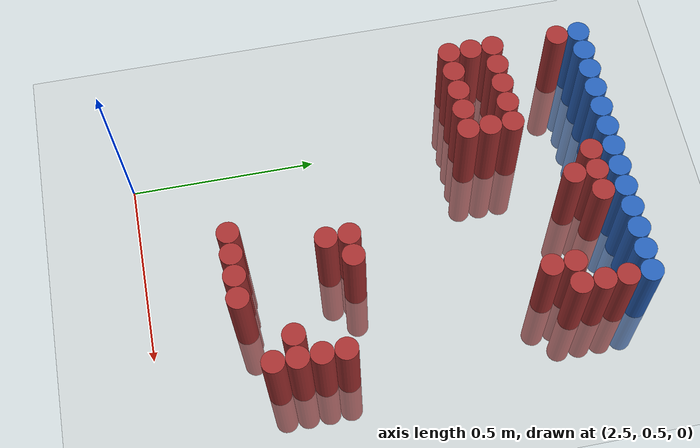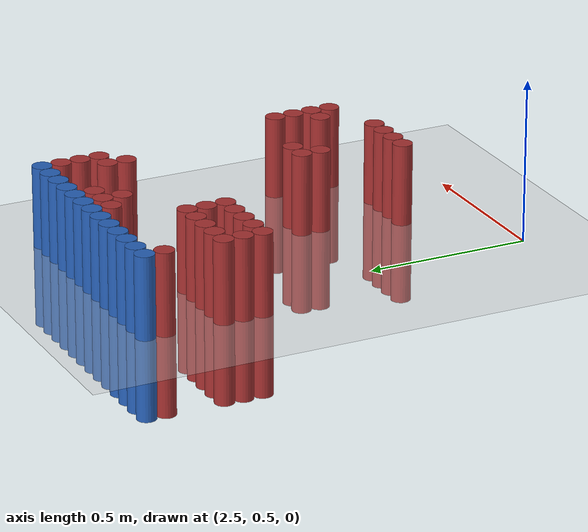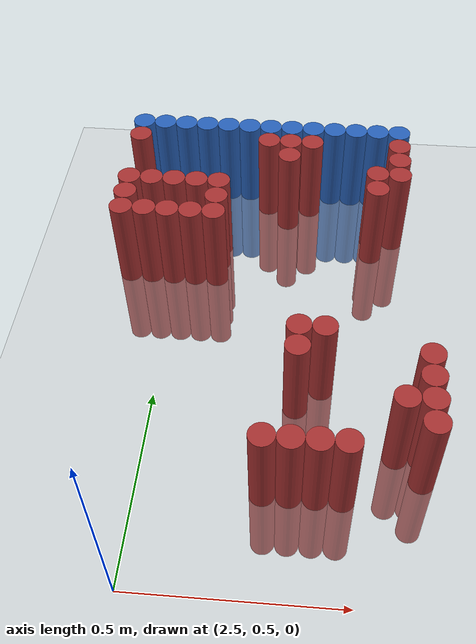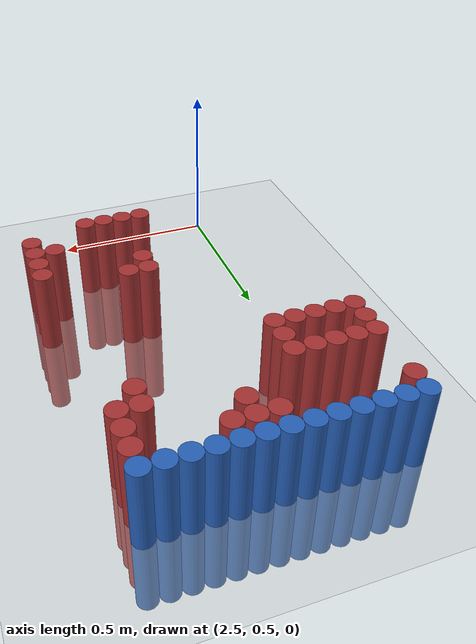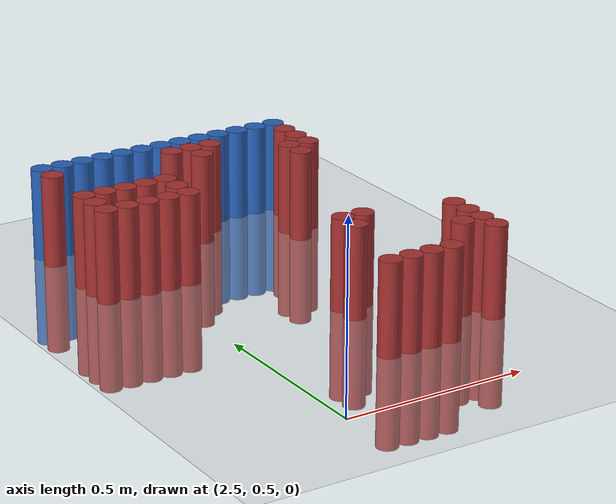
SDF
<sdf version="1.6">
 <world name="default">
  <model name="ground_plane">
   <static>1</static>
   <link name="link">
    <collision name="collision">
     <geometry><plane><normal>0 0 1</normal><size>100 100</size></plane></geometry>
     <surface><friction><ode><mu>100</mu><mu2>50</mu2></ode></friction></surface>
    </collision>
    <visual name="visual">
     <cast_shadows>0</cast_shadows>
     <geometry><plane><normal>0 0 1</normal><size>100 100</size></plane></geometry>
     <material>
      <script><uri>file://media/materials/scripts/gazebo.material</uri><name>Gazebo/Grey</name></script>
     </material>
    </visual>
   </link>
  </model>
  <model name="unit_cylinder_100">
   <static>1</static>
   <pose>2.370000 1.770000 0.000000 0.000000 0.000000 0.000000</pose>
   <link name="link">
    <inertial>
     <mass>1</mass>
     <inertia><ixx>0.145833</ixx><ixy>0</ixy><ixz>0</ixz><iyy>0.145833</iyy><iyz>0</iyz><izz>0.125</izz></inertia>
    </inertial>
    <collision name="collision">
     <geometry><cylinder><radius>0.030000</radius><length>0.5</length></cylinder></geometry>
    </collision>
    <visual name="visual">
     <geometry><cylinder><radius>0.030000</radius><length>0.5</length></cylinder></geometry>
     <material>
      <ambient>0.152000 0.379000 0.720000 1</ambient>
      <diffuse>0.152000 0.379000 0.720000 1</diffuse>
     </material>
     <material>
      <script><name>Gazebo/Grey</name><uri>file://media/materials/scripts/gazebo.material</uri></script>
     </material>
    </visual>
   </link>
  </model>
  <model name="unit_cylinder_101">
   <static>1</static>
   <pose>2.430000 1.770000 0.000000 0.000000 0.000000 0.000000</pose>
   <link name="link">
    <inertial>
     <mass>1</mass>
     <inertia><ixx>0.145833</ixx><ixy>0</ixy><ixz>0</ixz><iyy>0.145833</iyy><iyz>0</iyz><izz>0.125</izz></inertia>
    </inertial>
    <collision name="collision">
     <geometry><cylinder><radius>0.030000</radius><length>0.5</length></cylinder></geometry>
    </collision>
    <visual name="visual">
     <geometry><cylinder><radius>0.030000</radius><length>0.5</length></cylinder></geometry>
     <material>
      <ambient>0.152000 0.379000 0.720000 1</ambient>
      <diffuse>0.152000 0.379000 0.720000 1</diffuse>
     </material>
     <material>
      <script><name>Gazebo/Grey</name><uri>file://media/materials/scripts/gazebo.material</uri></script>
     </material>
    </visual>
   </link>
  </model>
  <model name="unit_cylinder_102">
   <static>1</static>
   <pose>2.490000 1.770000 0.000000 0.000000 0.000000 0.000000</pose>
   <link name="link">
    <inertial>
     <mass>1</mass>
     <inertia><ixx>0.145833</ixx><ixy>0</ixy><ixz>0</ixz><iyy>0.145833</iyy><iyz>0</iyz><izz>0.125</izz></inertia>
    </inertial>
    <collision name="collision">
     <geometry><cylinder><radius>0.030000</radius><length>0.5</length></cylinder></geometry>
    </collision>
    <visual name="visual">
     <geometry><cylinder><radius>0.030000</radius><length>0.5</length></cylinder></geometry>
     <material>
      <ambient>0.152000 0.379000 0.720000 1</ambient>
      <diffuse>0.152000 0.379000 0.720000 1</diffuse>
     </material>
     <material>
      <script><name>Gazebo/Grey</name><uri>file://media/materials/scripts/gazebo.material</uri></script>
     </material>
    </visual>
   </link>
  </model>
  <model name="unit_cylinder_103">
   <static>1</static>
   <pose>2.550000 1.770000 0.000000 0.000000 0.000000 0.000000</pose>
   <link name="link">
    <inertial>
     <mass>1</mass>
     <inertia><ixx>0.145833</ixx><ixy>0</ixy><ixz>0</ixz><iyy>0.145833</iyy><iyz>0</iyz><izz>0.125</izz></inertia>
    </inertial>
    <collision name="collision">
     <geometry><cylinder><radius>0.030000</radius><length>0.5</length></cylinder></geometry>
    </collision>
    <visual name="visual">
     <geometry><cylinder><radius>0.030000</radius><length>0.5</length></cylinder></geometry>
     <material>
      <ambient>0.152000 0.379000 0.720000 1</ambient>
      <diffuse>0.152000 0.379000 0.720000 1</diffuse>
     </material>
     <material>
      <script><name>Gazebo/Grey</name><uri>file://media/materials/scripts/gazebo.material</uri></script>
     </material>
    </visual>
   </link>
  </model>
  <model name="unit_cylinder_104">
   <static>1</static>
   <pose>2.610000 1.770000 0.000000 0.000000 0.000000 0.000000</pose>
   <link name="link">
    <inertial>
     <mass>1</mass>
     <inertia><ixx>0.145833</ixx><ixy>0</ixy><ixz>0</ixz><iyy>0.145833</iyy><iyz>0</iyz><izz>0.125</izz></inertia>
    </inertial>
    <collision name="collision">
     <geometry><cylinder><radius>0.030000</radius><length>0.5</length></cylinder></geometry>
    </collision>
    <visual name="visual">
     <geometry><cylinder><radius>0.030000</radius><length>0.5</length></cylinder></geometry>
     <material>
      <ambient>0.152000 0.379000 0.720000 1</ambient>
      <diffuse>0.152000 0.379000 0.720000 1</diffuse>
     </material>
     <material>
      <script><name>Gazebo/Grey</name><uri>file://media/materials/scripts/gazebo.material</uri></script>
     </material>
    </visual>
   </link>
  </model>
  <model name="unit_cylinder_105">
   <static>1</static>
   <pose>2.670000 1.770000 0.000000 0.000000 0.000000 0.000000</pose>
   <link name="link">
    <inertial>
     <mass>1</mass>
     <inertia><ixx>0.145833</ixx><ixy>0</ixy><ixz>0</ixz><iyy>0.145833</iyy><iyz>0</iyz><izz>0.125</izz></inertia>
    </inertial>
    <collision name="collision">
     <geometry><cylinder><radius>0.030000</radius><length>0.5</length></cylinder></geometry>
    </collision>
    <visual name="visual">
     <geometry><cylinder><radius>0.030000</radius><length>0.5</length></cylinder></geometry>
     <material>
      <ambient>0.152000 0.379000 0.720000 1</ambient>
      <diffuse>0.152000 0.379000 0.720000 1</diffuse>
     </material>
     <material>
      <script><name>Gazebo/Grey</name><uri>file://media/materials/scripts/gazebo.material</uri></script>
     </material>
    </visual>
   </link>
  </model>
  <model name="unit_cylinder_106">
   <static>1</static>
   <pose>2.730000 1.770000 0.000000 0.000000 0.000000 0.000000</pose>
   <link name="link">
    <inertial>
     <mass>1</mass>
     <inertia><ixx>0.145833</ixx><ixy>0</ixy><ixz>0</ixz><iyy>0.145833</iyy><iyz>0</iyz><izz>0.125</izz></inertia>
    </inertial>
    <collision name="collision">
     <geometry><cylinder><radius>0.030000</radius><length>0.5</length></cylinder></geometry>
    </collision>
    <visual name="visual">
     <geometry><cylinder><radius>0.030000</radius><length>0.5</length></cylinder></geometry>
     <material>
      <ambient>0.152000 0.379000 0.720000 1</ambient>
      <diffuse>0.152000 0.379000 0.720000 1</diffuse>
     </material>
     <material>
      <script><name>Gazebo/Grey</name><uri>file://media/materials/scripts/gazebo.material</uri></script>
     </material>
    </visual>
   </link>
  </model>
  <model name="unit_cylinder_107">
   <static>1</static>
   <pose>2.790000 1.770000 0.000000 0.000000 0.000000 0.000000</pose>
   <link name="link">
    <inertial>
     <mass>1</mass>
     <inertia><ixx>0.145833</ixx><ixy>0</ixy><ixz>0</ixz><iyy>0.145833</iyy><iyz>0</iyz><izz>0.125</izz></inertia>
    </inertial>
    <collision name="collision">
     <geometry><cylinder><radius>0.030000</radius><length>0.5</length></cylinder></geometry>
    </collision>
    <visual name="visual">
     <geometry><cylinder><radius>0.030000</radius><length>0.5</length></cylinder></geometry>
     <material>
      <ambient>0.152000 0.379000 0.720000 1</ambient>
      <diffuse>0.152000 0.379000 0.720000 1</diffuse>
     </material>
     <material>
      <script><name>Gazebo/Grey</name><uri>file://media/materials/scripts/gazebo.material</uri></script>
     </material>
    </visual>
   </link>
  </model>
  <model name="unit_cylinder_108">
   <static>1</static>
   <pose>2.850000 1.770000 0.000000 0.000000 0.000000 0.000000</pose>
   <link name="link">
    <inertial>
     <mass>1</mass>
     <inertia><ixx>0.145833</ixx><ixy>0</ixy><ixz>0</ixz><iyy>0.145833</iyy><iyz>0</iyz><izz>0.125</izz></inertia>
    </inertial>
    <collision name="collision">
     <geometry><cylinder><radius>0.030000</radius><length>0.5</length></cylinder></geometry>
    </collision>
    <visual name="visual">
     <geometry><cylinder><radius>0.030000</radius><length>0.5</length></cylinder></geometry>
     <material>
      <ambient>0.152000 0.379000 0.720000 1</ambient>
      <diffuse>0.152000 0.379000 0.720000 1</diffuse>
     </material>
     <material>
      <script><name>Gazebo/Grey</name><uri>file://media/materials/scripts/gazebo.material</uri></script>
     </material>
    </visual>
   </link>
  </model>
  <model name="unit_cylinder_109">
   <static>1</static>
   <pose>2.910000 1.770000 0.000000 0.000000 0.000000 0.000000</pose>
   <link name="link">
    <inertial>
     <mass>1</mass>
     <inertia><ixx>0.145833</ixx><ixy>0</ixy><ixz>0</ixz><iyy>0.145833</iyy><iyz>0</iyz><izz>0.125</izz></inertia>
    </inertial>
    <collision name="collision">
     <geometry><cylinder><radius>0.030000</radius><length>0.5</length></cylinder></geometry>
    </collision>
    <visual name="visual">
     <geometry><cylinder><radius>0.030000</radius><length>0.5</length></cylinder></geometry>
     <material>
      <ambient>0.152000 0.379000 0.720000 1</ambient>
      <diffuse>0.152000 0.379000 0.720000 1</diffuse>
     </material>
     <material>
      <script><name>Gazebo/Grey</name><uri>file://media/materials/scripts/gazebo.material</uri></script>
     </material>
    </visual>
   </link>
  </model>
  <model name="unit_cylinder_110">
   <static>1</static>
   <pose>2.970000 1.770000 0.000000 0.000000 0.000000 0.000000</pose>
   <link name="link">
    <inertial>
     <mass>1</mass>
     <inertia><ixx>0.145833</ixx><ixy>0</ixy><ixz>0</ixz><iyy>0.145833</iyy><iyz>0</iyz><izz>0.125</izz></inertia>
    </inertial>
    <collision name="collision">
     <geometry><cylinder><radius>0.030000</radius><length>0.5</length></cylinder></geometry>
    </collision>
    <visual name="visual">
     <geometry><cylinder><radius>0.030000</radius><length>0.5</length></cylinder></geometry>
     <material>
      <ambient>0.152000 0.379000 0.720000 1</ambient>
      <diffuse>0.152000 0.379000 0.720000 1</diffuse>
     </material>
     <material>
      <script><name>Gazebo/Grey</name><uri>file://media/materials/scripts/gazebo.material</uri></script>
     </material>
    </visual>
   </link>
  </model>
  <model name="unit_cylinder_111">
   <static>1</static>
   <pose>3.030000 1.770000 0.000000 0.000000 0.000000 0.000000</pose>
   <link name="link">
    <inertial>
     <mass>1</mass>
     <inertia><ixx>0.145833</ixx><ixy>0</ixy><ixz>0</ixz><iyy>0.145833</iyy><iyz>0</iyz><izz>0.125</izz></inertia>
    </inertial>
    <collision name="collision">
     <geometry><cylinder><radius>0.030000</radius><length>0.5</length></cylinder></geometry>
    </collision>
    <visual name="visual">
     <geometry><cylinder><radius>0.030000</radius><length>0.5</length></cylinder></geometry>
     <material>
      <ambient>0.152000 0.379000 0.720000 1</ambient>
      <diffuse>0.152000 0.379000 0.720000 1</diffuse>
     </material>
     <material>
      <script><name>Gazebo/Grey</name><uri>file://media/materials/scripts/gazebo.material</uri></script>
     </material>
    </visual>
   </link>
  </model>
  <model name="unit_cylinder_112">
   <static>1</static>
   <pose>3.090000 1.770000 0.000000 0.000000 0.000000 0.000000</pose>
   <link name="link">
    <inertial>
     <mass>1</mass>
     <inertia><ixx>0.145833</ixx><ixy>0</ixy><ixz>0</ixz><iyy>0.145833</iyy><iyz>0</iyz><izz>0.125</izz></inertia>
    </inertial>
    <collision name="collision">
     <geometry><cylinder><radius>0.030000</radius><length>0.5</length></cylinder></geometry>
    </collision>
    <visual name="visual">
     <geometry><cylinder><radius>0.030000</radius><length>0.5</length></cylinder></geometry>
     <material>
      <ambient>0.152000 0.379000 0.720000 1</ambient>
      <diffuse>0.152000 0.379000 0.720000 1</diffuse>
     </material>
     <material>
      <script><name>Gazebo/Grey</name><uri>file://media/materials/scripts/gazebo.material</uri></script>
     </material>
    </visual>
   </link>
  </model>
  <model name="unit_cylinder_129">
   <static>1</static>
   <pose>2.370000 1.710000 0.000000 0.000000 0.000000 0.000000</pose>
   <link name="link">
    <inertial>
     <mass>1</mass>
     <inertia><ixx>0.145833</ixx><ixy>0</ixy><ixz>0</ixz><iyy>0.145833</iyy><iyz>0</iyz><izz>0.125</izz></inertia>
    </inertial>
    <collision name="collision">
     <geometry><cylinder><radius>0.030000</radius><length>0.5</length></cylinder></geometry>
    </collision>
    <visual name="visual">
     <geometry><cylinder><radius>0.030000</radius><length>0.5</length></cylinder></geometry>
     <material>
      <ambient>0.648000 0.192000 0.192000 1</ambient>
      <diffuse>0.648000 0.192000 0.192000 1</diffuse>
     </material>
     <material>
      <script><name>Gazebo/Grey</name><uri>file://media/materials/scripts/gazebo.material</uri></script>
     </material>
    </visual>
   </link>
  </model>
  <model name="unit_cylinder_130">
   <static>1</static>
   <pose>2.730000 1.710000 0.000000 0.000000 0.000000 0.000000</pose>
   <link name="link">
    <inertial>
     <mass>1</mass>
     <inertia><ixx>0.145833</ixx><ixy>0</ixy><ixz>0</ixz><iyy>0.145833</iyy><iyz>0</iyz><izz>0.125</izz></inertia>
    </inertial>
    <collision name="collision">
     <geometry><cylinder><radius>0.030000</radius><length>0.5</length></cylinder></geometry>
    </collision>
    <visual name="visual">
     <geometry><cylinder><radius>0.030000</radius><length>0.5</length></cylinder></geometry>
     <material>
      <ambient>0.648000 0.192000 0.192000 1</ambient>
      <diffuse>0.648000 0.192000 0.192000 1</diffuse>
     </material>
     <material>
      <script><name>Gazebo/Grey</name><uri>file://media/materials/scripts/gazebo.material</uri></script>
     </material>
    </visual>
   </link>
  </model>
  <model name="unit_cylinder_131">
   <static>1</static>
   <pose>2.790000 1.710000 0.000000 0.000000 0.000000 0.000000</pose>
   <link name="link">
    <inertial>
     <mass>1</mass>
     <inertia><ixx>0.145833</ixx><ixy>0</ixy><ixz>0</ixz><iyy>0.145833</iyy><iyz>0</iyz><izz>0.125</izz></inertia>
    </inertial>
    <collision name="collision">
     <geometry><cylinder><radius>0.030000</radius><length>0.5</length></cylinder></geometry>
    </collision>
    <visual name="visual">
     <geometry><cylinder><radius>0.030000</radius><length>0.5</length></cylinder></geometry>
     <material>
      <ambient>0.648000 0.192000 0.192000 1</ambient>
      <diffuse>0.648000 0.192000 0.192000 1</diffuse>
     </material>
     <material>
      <script><name>Gazebo/Grey</name><uri>file://media/materials/scripts/gazebo.material</uri></script>
     </material>
    </visual>
   </link>
  </model>
  <model name="unit_cylinder_132">
   <static>1</static>
   <pose>2.850000 1.710000 0.000000 0.000000 0.000000 0.000000</pose>
   <link name="link">
    <inertial>
     <mass>1</mass>
     <inertia><ixx>0.145833</ixx><ixy>0</ixy><ixz>0</ixz><iyy>0.145833</iyy><iyz>0</iyz><izz>0.125</izz></inertia>
    </inertial>
    <collision name="collision">
     <geometry><cylinder><radius>0.030000</radius><length>0.5</length></cylinder></geometry>
    </collision>
    <visual name="visual">
     <geometry><cylinder><radius>0.030000</radius><length>0.5</length></cylinder></geometry>
     <material>
      <ambient>0.648000 0.192000 0.192000 1</ambient>
      <diffuse>0.648000 0.192000 0.192000 1</diffuse>
     </material>
     <material>
      <script><name>Gazebo/Grey</name><uri>file://media/materials/scripts/gazebo.material</uri></script>
     </material>
    </visual>
   </link>
  </model>
  <model name="unit_cylinder_133">
   <static>1</static>
   <pose>3.090000 1.710000 0.000000 0.000000 0.000000 0.000000</pose>
   <link name="link">
    <inertial>
     <mass>1</mass>
     <inertia><ixx>0.145833</ixx><ixy>0</ixy><ixz>0</ixz><iyy>0.145833</iyy><iyz>0</iyz><izz>0.125</izz></inertia>
    </inertial>
    <collision name="collision">
     <geometry><cylinder><radius>0.030000</radius><length>0.5</length></cylinder></geometry>
    </collision>
    <visual name="visual">
     <geometry><cylinder><radius>0.030000</radius><length>0.5</length></cylinder></geometry>
     <material>
      <ambient>0.648000 0.192000 0.192000 1</ambient>
      <diffuse>0.648000 0.192000 0.192000 1</diffuse>
     </material>
     <material>
      <script><name>Gazebo/Grey</name><uri>file://media/materials/scripts/gazebo.material</uri></script>
     </material>
    </visual>
   </link>
  </model>
  <model name="unit_cylinder_138">
   <static>1</static>
   <pose>2.790000 1.650000 0.000000 0.000000 0.000000 0.000000</pose>
   <link name="link">
    <inertial>
     <mass>1</mass>
     <inertia><ixx>0.145833</ixx><ixy>0</ixy><ixz>0</ixz><iyy>0.145833</iyy><iyz>0</iyz><izz>0.125</izz></inertia>
    </inertial>
    <collision name="collision">
     <geometry><cylinder><radius>0.030000</radius><length>0.5</length></cylinder></geometry>
    </collision>
    <visual name="visual">
     <geometry><cylinder><radius>0.030000</radius><length>0.5</length></cylinder></geometry>
     <material>
      <ambient>0.648000 0.192000 0.192000 1</ambient>
      <diffuse>0.648000 0.192000 0.192000 1</diffuse>
     </material>
     <material>
      <script><name>Gazebo/Grey</name><uri>file://media/materials/scripts/gazebo.material</uri></script>
     </material>
    </visual>
   </link>
  </model>
  <model name="unit_cylinder_139">
   <static>1</static>
   <pose>3.090000 1.650000 0.000000 0.000000 0.000000 0.000000</pose>
   <link name="link">
    <inertial>
     <mass>1</mass>
     <inertia><ixx>0.145833</ixx><ixy>0</ixy><ixz>0</ixz><iyy>0.145833</iyy><iyz>0</iyz><izz>0.125</izz></inertia>
    </inertial>
    <collision name="collision">
     <geometry><cylinder><radius>0.030000</radius><length>0.5</length></cylinder></geometry>
    </collision>
    <visual name="visual">
     <geometry><cylinder><radius>0.030000</radius><length>0.5</length></cylinder></geometry>
     <material>
      <ambient>0.648000 0.192000 0.192000 1</ambient>
      <diffuse>0.648000 0.192000 0.192000 1</diffuse>
     </material>
     <material>
      <script><name>Gazebo/Grey</name><uri>file://media/materials/scripts/gazebo.material</uri></script>
     </material>
    </visual>
   </link>
  </model>
  <model name="unit_cylinder_145">
   <static>1</static>
   <pose>3.030000 1.590000 0.000000 0.000000 0.000000 0.000000</pose>
   <link name="link">
    <inertial>
     <mass>1</mass>
     <inertia><ixx>0.145833</ixx><ixy>0</ixy><ixz>0</ixz><iyy>0.145833</iyy><iyz>0</iyz><izz>0.125</izz></inertia>
    </inertial>
    <collision name="collision">
     <geometry><cylinder><radius>0.030000</radius><length>0.5</length></cylinder></geometry>
    </collision>
    <visual name="visual">
     <geometry><cylinder><radius>0.030000</radius><length>0.5</length></cylinder></geometry>
     <material>
      <ambient>0.648000 0.192000 0.192000 1</ambient>
      <diffuse>0.648000 0.192000 0.192000 1</diffuse>
     </material>
     <material>
      <script><name>Gazebo/Grey</name><uri>file://media/materials/scripts/gazebo.material</uri></script>
     </material>
    </visual>
   </link>
  </model>
  <model name="unit_cylinder_146">
   <static>1</static>
   <pose>3.090000 1.590000 0.000000 0.000000 0.000000 0.000000</pose>
   <link name="link">
    <inertial>
     <mass>1</mass>
     <inertia><ixx>0.145833</ixx><ixy>0</ixy><ixz>0</ixz><iyy>0.145833</iyy><iyz>0</iyz><izz>0.125</izz></inertia>
    </inertial>
    <collision name="collision">
     <geometry><cylinder><radius>0.030000</radius><length>0.5</length></cylinder></geometry>
    </collision>
    <visual name="visual">
     <geometry><cylinder><radius>0.030000</radius><length>0.5</length></cylinder></geometry>
     <material>
      <ambient>0.648000 0.192000 0.192000 1</ambient>
      <diffuse>0.648000 0.192000 0.192000 1</diffuse>
     </material>
     <material>
      <script><name>Gazebo/Grey</name><uri>file://media/materials/scripts/gazebo.material</uri></script>
     </material>
    </visual>
   </link>
  </model>
  <model name="unit_cylinder_153">
   <static>1</static>
   <pose>2.370000 1.530000 0.000000 0.000000 0.000000 0.000000</pose>
   <link name="link">
    <inertial>
     <mass>1</mass>
     <inertia><ixx>0.145833</ixx><ixy>0</ixy><ixz>0</ixz><iyy>0.145833</iyy><iyz>0</iyz><izz>0.125</izz></inertia>
    </inertial>
    <collision name="collision">
     <geometry><cylinder><radius>0.030000</radius><length>0.5</length></cylinder></geometry>
    </collision>
    <visual name="visual">
     <geometry><cylinder><radius>0.030000</radius><length>0.5</length></cylinder></geometry>
     <material>
      <ambient>0.648000 0.192000 0.192000 1</ambient>
      <diffuse>0.648000 0.192000 0.192000 1</diffuse>
     </material>
     <material>
      <script><name>Gazebo/Grey</name><uri>file://media/materials/scripts/gazebo.material</uri></script>
     </material>
    </visual>
   </link>
  </model>
  <model name="unit_cylinder_154">
   <static>1</static>
   <pose>2.430000 1.530000 0.000000 0.000000 0.000000 0.000000</pose>
   <link name="link">
    <inertial>
     <mass>1</mass>
     <inertia><ixx>0.145833</ixx><ixy>0</ixy><ixz>0</ixz><iyy>0.145833</iyy><iyz>0</iyz><izz>0.125</izz></inertia>
    </inertial>
    <collision name="collision">
     <geometry><cylinder><radius>0.030000</radius><length>0.5</length></cylinder></geometry>
    </collision>
    <visual name="visual">
     <geometry><cylinder><radius>0.030000</radius><length>0.5</length></cylinder></geometry>
     <material>
      <ambient>0.648000 0.192000 0.192000 1</ambient>
      <diffuse>0.648000 0.192000 0.192000 1</diffuse>
     </material>
     <material>
      <script><name>Gazebo/Grey</name><uri>file://media/materials/scripts/gazebo.material</uri></script>
     </material>
    </visual>
   </link>
  </model>
  <model name="unit_cylinder_155">
   <static>1</static>
   <pose>2.490000 1.530000 0.000000 0.000000 0.000000 0.000000</pose>
   <link name="link">
    <inertial>
     <mass>1</mass>
     <inertia><ixx>0.145833</ixx><ixy>0</ixy><ixz>0</ixz><iyy>0.145833</iyy><iyz>0</iyz><izz>0.125</izz></inertia>
    </inertial>
    <collision name="collision">
     <geometry><cylinder><radius>0.030000</radius><length>0.5</length></cylinder></geometry>
    </collision>
    <visual name="visual">
     <geometry><cylinder><radius>0.030000</radius><length>0.5</length></cylinder></geometry>
     <material>
      <ambient>0.648000 0.192000 0.192000 1</ambient>
      <diffuse>0.648000 0.192000 0.192000 1</diffuse>
     </material>
     <material>
      <script><name>Gazebo/Grey</name><uri>file://media/materials/scripts/gazebo.material</uri></script>
     </material>
    </visual>
   </link>
  </model>
  <model name="unit_cylinder_156">
   <static>1</static>
   <pose>2.550000 1.530000 0.000000 0.000000 0.000000 0.000000</pose>
   <link name="link">
    <inertial>
     <mass>1</mass>
     <inertia><ixx>0.145833</ixx><ixy>0</ixy><ixz>0</ixz><iyy>0.145833</iyy><iyz>0</iyz><izz>0.125</izz></inertia>
    </inertial>
    <collision name="collision">
     <geometry><cylinder><radius>0.030000</radius><length>0.5</length></cylinder></geometry>
    </collision>
    <visual name="visual">
     <geometry><cylinder><radius>0.030000</radius><length>0.5</length></cylinder></geometry>
     <material>
      <ambient>0.648000 0.192000 0.192000 1</ambient>
      <diffuse>0.648000 0.192000 0.192000 1</diffuse>
     </material>
     <material>
      <script><name>Gazebo/Grey</name><uri>file://media/materials/scripts/gazebo.material</uri></script>
     </material>
    </visual>
   </link>
  </model>
  <model name="unit_cylinder_157">
   <static>1</static>
   <pose>2.610000 1.530000 0.000000 0.000000 0.000000 0.000000</pose>
   <link name="link">
    <inertial>
     <mass>1</mass>
     <inertia><ixx>0.145833</ixx><ixy>0</ixy><ixz>0</ixz><iyy>0.145833</iyy><iyz>0</iyz><izz>0.125</izz></inertia>
    </inertial>
    <collision name="collision">
     <geometry><cylinder><radius>0.030000</radius><length>0.5</length></cylinder></geometry>
    </collision>
    <visual name="visual">
     <geometry><cylinder><radius>0.030000</radius><length>0.5</length></cylinder></geometry>
     <material>
      <ambient>0.648000 0.192000 0.192000 1</ambient>
      <diffuse>0.648000 0.192000 0.192000 1</diffuse>
     </material>
     <material>
      <script><name>Gazebo/Grey</name><uri>file://media/materials/scripts/gazebo.material</uri></script>
     </material>
    </visual>
   </link>
  </model>
  <model name="unit_cylinder_158">
   <static>1</static>
   <pose>3.030000 1.530000 0.000000 0.000000 0.000000 0.000000</pose>
   <link name="link">
    <inertial>
     <mass>1</mass>
     <inertia><ixx>0.145833</ixx><ixy>0</ixy><ixz>0</ixz><iyy>0.145833</iyy><iyz>0</iyz><izz>0.125</izz></inertia>
    </inertial>
    <collision name="collision">
     <geometry><cylinder><radius>0.030000</radius><length>0.5</length></cylinder></geometry>
    </collision>
    <visual name="visual">
     <geometry><cylinder><radius>0.030000</radius><length>0.5</length></cylinder></geometry>
     <material>
      <ambient>0.648000 0.192000 0.192000 1</ambient>
      <diffuse>0.648000 0.192000 0.192000 1</diffuse>
     </material>
     <material>
      <script><name>Gazebo/Grey</name><uri>file://media/materials/scripts/gazebo.material</uri></script>
     </material>
    </visual>
   </link>
  </model>
  <model name="unit_cylinder_163">
   <static>1</static>
   <pose>2.370000 1.470000 0.000000 0.000000 0.000000 0.000000</pose>
   <link name="link">
    <inertial>
     <mass>1</mass>
     <inertia><ixx>0.145833</ixx><ixy>0</ixy><ixz>0</ixz><iyy>0.145833</iyy><iyz>0</iyz><izz>0.125</izz></inertia>
    </inertial>
    <collision name="collision">
     <geometry><cylinder><radius>0.030000</radius><length>0.5</length></cylinder></geometry>
    </collision>
    <visual name="visual">
     <geometry><cylinder><radius>0.030000</radius><length>0.5</length></cylinder></geometry>
     <material>
      <ambient>0.648000 0.192000 0.192000 1</ambient>
      <diffuse>0.648000 0.192000 0.192000 1</diffuse>
     </material>
     <material>
      <script><name>Gazebo/Grey</name><uri>file://media/materials/scripts/gazebo.material</uri></script>
     </material>
    </visual>
   </link>
  </model>
  <model name="unit_cylinder_164">
   <static>1</static>
   <pose>2.610000 1.470000 0.000000 0.000000 0.000000 0.000000</pose>
   <link name="link">
    <inertial>
     <mass>1</mass>
     <inertia><ixx>0.145833</ixx><ixy>0</ixy><ixz>0</ixz><iyy>0.145833</iyy><iyz>0</iyz><izz>0.125</izz></inertia>
    </inertial>
    <collision name="collision">
     <geometry><cylinder><radius>0.030000</radius><length>0.5</length></cylinder></geometry>
    </collision>
    <visual name="visual">
     <geometry><cylinder><radius>0.030000</radius><length>0.5</length></cylinder></geometry>
     <material>
      <ambient>0.648000 0.192000 0.192000 1</ambient>
      <diffuse>0.648000 0.192000 0.192000 1</diffuse>
     </material>
     <material>
      <script><name>Gazebo/Grey</name><uri>file://media/materials/scripts/gazebo.material</uri></script>
     </material>
    </visual>
   </link>
  </model>
  <model name="unit_cylinder_173">
   <static>1</static>
   <pose>2.370000 1.410000 0.000000 0.000000 0.000000 0.000000</pose>
   <link name="link">
    <inertial>
     <mass>1</mass>
     <inertia><ixx>0.145833</ixx><ixy>0</ixy><ixz>0</ixz><iyy>0.145833</iyy><iyz>0</iyz><izz>0.125</izz></inertia>
    </inertial>
    <collision name="collision">
     <geometry><cylinder><radius>0.030000</radius><length>0.5</length></cylinder></geometry>
    </collision>
    <visual name="visual">
     <geometry><cylinder><radius>0.030000</radius><length>0.5</length></cylinder></geometry>
     <material>
      <ambient>0.648000 0.192000 0.192000 1</ambient>
      <diffuse>0.648000 0.192000 0.192000 1</diffuse>
     </material>
     <material>
      <script><name>Gazebo/Grey</name><uri>file://media/materials/scripts/gazebo.material</uri></script>
     </material>
    </visual>
   </link>
  </model>
  <model name="unit_cylinder_174">
   <static>1</static>
   <pose>2.430000 1.410000 0.000000 0.000000 0.000000 0.000000</pose>
   <link name="link">
    <inertial>
     <mass>1</mass>
     <inertia><ixx>0.145833</ixx><ixy>0</ixy><ixz>0</ixz><iyy>0.145833</iyy><iyz>0</iyz><izz>0.125</izz></inertia>
    </inertial>
    <collision name="collision">
     <geometry><cylinder><radius>0.030000</radius><length>0.5</length></cylinder></geometry>
    </collision>
    <visual name="visual">
     <geometry><cylinder><radius>0.030000</radius><length>0.5</length></cylinder></geometry>
     <material>
      <ambient>0.648000 0.192000 0.192000 1</ambient>
      <diffuse>0.648000 0.192000 0.192000 1</diffuse>
     </material>
     <material>
      <script><name>Gazebo/Grey</name><uri>file://media/materials/scripts/gazebo.material</uri></script>
     </material>
    </visual>
   </link>
  </model>
  <model name="unit_cylinder_175">
   <static>1</static>
   <pose>2.490000 1.410000 0.000000 0.000000 0.000000 0.000000</pose>
   <link name="link">
    <inertial>
     <mass>1</mass>
     <inertia><ixx>0.145833</ixx><ixy>0</ixy><ixz>0</ixz><iyy>0.145833</iyy><iyz>0</iyz><izz>0.125</izz></inertia>
    </inertial>
    <collision name="collision">
     <geometry><cylinder><radius>0.030000</radius><length>0.5</length></cylinder></geometry>
    </collision>
    <visual name="visual">
     <geometry><cylinder><radius>0.030000</radius><length>0.5</length></cylinder></geometry>
     <material>
      <ambient>0.648000 0.192000 0.192000 1</ambient>
      <diffuse>0.648000 0.192000 0.192000 1</diffuse>
     </material>
     <material>
      <script><name>Gazebo/Grey</name><uri>file://media/materials/scripts/gazebo.material</uri></script>
     </material>
    </visual>
   </link>
  </model>
  <model name="unit_cylinder_176">
   <static>1</static>
   <pose>2.550000 1.410000 0.000000 0.000000 0.000000 0.000000</pose>
   <link name="link">
    <inertial>
     <mass>1</mass>
     <inertia><ixx>0.145833</ixx><ixy>0</ixy><ixz>0</ixz><iyy>0.145833</iyy><iyz>0</iyz><izz>0.125</izz></inertia>
    </inertial>
    <collision name="collision">
     <geometry><cylinder><radius>0.030000</radius><length>0.5</length></cylinder></geometry>
    </collision>
    <visual name="visual">
     <geometry><cylinder><radius>0.030000</radius><length>0.5</length></cylinder></geometry>
     <material>
      <ambient>0.648000 0.192000 0.192000 1</ambient>
      <diffuse>0.648000 0.192000 0.192000 1</diffuse>
     </material>
     <material>
      <script><name>Gazebo/Grey</name><uri>file://media/materials/scripts/gazebo.material</uri></script>
     </material>
    </visual>
   </link>
  </model>
  <model name="unit_cylinder_177">
   <static>1</static>
   <pose>2.610000 1.410000 0.000000 0.000000 0.000000 0.000000</pose>
   <link name="link">
    <inertial>
     <mass>1</mass>
     <inertia><ixx>0.145833</ixx><ixy>0</ixy><ixz>0</ixz><iyy>0.145833</iyy><iyz>0</iyz><izz>0.125</izz></inertia>
    </inertial>
    <collision name="collision">
     <geometry><cylinder><radius>0.030000</radius><length>0.5</length></cylinder></geometry>
    </collision>
    <visual name="visual">
     <geometry><cylinder><radius>0.030000</radius><length>0.5</length></cylinder></geometry>
     <material>
      <ambient>0.648000 0.192000 0.192000 1</ambient>
      <diffuse>0.648000 0.192000 0.192000 1</diffuse>
     </material>
     <material>
      <script><name>Gazebo/Grey</name><uri>file://media/materials/scripts/gazebo.material</uri></script>
     </material>
    </visual>
   </link>
  </model>
  <model name="unit_cylinder_186">
   <static>1</static>
   <pose>2.850000 1.050000 0.000000 0.000000 0.000000 0.000000</pose>
   <link name="link">
    <inertial>
     <mass>1</mass>
     <inertia><ixx>0.145833</ixx><ixy>0</ixy><ixz>0</ixz><iyy>0.145833</iyy><iyz>0</iyz><izz>0.125</izz></inertia>
    </inertial>
    <collision name="collision">
     <geometry><cylinder><radius>0.030000</radius><length>0.5</length></cylinder></geometry>
    </collision>
    <visual name="visual">
     <geometry><cylinder><radius>0.030000</radius><length>0.5</length></cylinder></geometry>
     <material>
      <ambient>0.648000 0.192000 0.192000 1</ambient>
      <diffuse>0.648000 0.192000 0.192000 1</diffuse>
     </material>
     <material>
      <script><name>Gazebo/Grey</name><uri>file://media/materials/scripts/gazebo.material</uri></script>
     </material>
    </visual>
   </link>
  </model>
  <model name="unit_cylinder_187">
   <static>1</static>
   <pose>2.910000 1.050000 0.000000 0.000000 0.000000 0.000000</pose>
   <link name="link">
    <inertial>
     <mass>1</mass>
     <inertia><ixx>0.145833</ixx><ixy>0</ixy><ixz>0</ixz><iyy>0.145833</iyy><iyz>0</iyz><izz>0.125</izz></inertia>
    </inertial>
    <collision name="collision">
     <geometry><cylinder><radius>0.030000</radius><length>0.5</length></cylinder></geometry>
    </collision>
    <visual name="visual">
     <geometry><cylinder><radius>0.030000</radius><length>0.5</length></cylinder></geometry>
     <material>
      <ambient>0.648000 0.192000 0.192000 1</ambient>
      <diffuse>0.648000 0.192000 0.192000 1</diffuse>
     </material>
     <material>
      <script><name>Gazebo/Grey</name><uri>file://media/materials/scripts/gazebo.material</uri></script>
     </material>
    </visual>
   </link>
  </model>
  <model name="unit_cylinder_191">
   <static>1</static>
   <pose>2.850000 0.990000 0.000000 0.000000 0.000000 0.000000</pose>
   <link name="link">
    <inertial>
     <mass>1</mass>
     <inertia><ixx>0.145833</ixx><ixy>0</ixy><ixz>0</ixz><iyy>0.145833</iyy><iyz>0</iyz><izz>0.125</izz></inertia>
    </inertial>
    <collision name="collision">
     <geometry><cylinder><radius>0.030000</radius><length>0.5</length></cylinder></geometry>
    </collision>
    <visual name="visual">
     <geometry><cylinder><radius>0.030000</radius><length>0.5</length></cylinder></geometry>
     <material>
      <ambient>0.648000 0.192000 0.192000 1</ambient>
      <diffuse>0.648000 0.192000 0.192000 1</diffuse>
     </material>
     <material>
      <script><name>Gazebo/Grey</name><uri>file://media/materials/scripts/gazebo.material</uri></script>
     </material>
    </visual>
   </link>
  </model>
  <model name="unit_cylinder_192">
   <static>1</static>
   <pose>3.150000 0.990000 0.000000 0.000000 0.000000 0.000000</pose>
   <link name="link">
    <inertial>
     <mass>1</mass>
     <inertia><ixx>0.145833</ixx><ixy>0</ixy><ixz>0</ixz><iyy>0.145833</iyy><iyz>0</iyz><izz>0.125</izz></inertia>
    </inertial>
    <collision name="collision">
     <geometry><cylinder><radius>0.030000</radius><length>0.5</length></cylinder></geometry>
    </collision>
    <visual name="visual">
     <geometry><cylinder><radius>0.030000</radius><length>0.5</length></cylinder></geometry>
     <material>
      <ambient>0.648000 0.192000 0.192000 1</ambient>
      <diffuse>0.648000 0.192000 0.192000 1</diffuse>
     </material>
     <material>
      <script><name>Gazebo/Grey</name><uri>file://media/materials/scripts/gazebo.material</uri></script>
     </material>
    </visual>
   </link>
  </model>
  <model name="unit_cylinder_196">
   <static>1</static>
   <pose>3.150000 0.930000 0.000000 0.000000 0.000000 0.000000</pose>
   <link name="link">
    <inertial>
     <mass>1</mass>
     <inertia><ixx>0.145833</ixx><ixy>0</ixy><ixz>0</ixz><iyy>0.145833</iyy><iyz>0</iyz><izz>0.125</izz></inertia>
    </inertial>
    <collision name="collision">
     <geometry><cylinder><radius>0.030000</radius><length>0.5</length></cylinder></geometry>
    </collision>
    <visual name="visual">
     <geometry><cylinder><radius>0.030000</radius><length>0.5</length></cylinder></geometry>
     <material>
      <ambient>0.648000 0.192000 0.192000 1</ambient>
      <diffuse>0.648000 0.192000 0.192000 1</diffuse>
     </material>
     <material>
      <script><name>Gazebo/Grey</name><uri>file://media/materials/scripts/gazebo.material</uri></script>
     </material>
    </visual>
   </link>
  </model>
  <model name="unit_cylinder_199">
   <static>1</static>
   <pose>3.090000 0.870000 0.000000 0.000000 0.000000 0.000000</pose>
   <link name="link">
    <inertial>
     <mass>1</mass>
     <inertia><ixx>0.145833</ixx><ixy>0</ixy><ixz>0</ixz><iyy>0.145833</iyy><iyz>0</iyz><izz>0.125</izz></inertia>
    </inertial>
    <collision name="collision">
     <geometry><cylinder><radius>0.030000</radius><length>0.5</length></cylinder></geometry>
    </collision>
    <visual name="visual">
     <geometry><cylinder><radius>0.030000</radius><length>0.5</length></cylinder></geometry>
     <material>
      <ambient>0.648000 0.192000 0.192000 1</ambient>
      <diffuse>0.648000 0.192000 0.192000 1</diffuse>
     </material>
     <material>
      <script><name>Gazebo/Grey</name><uri>file://media/materials/scripts/gazebo.material</uri></script>
     </material>
    </visual>
   </link>
  </model>
  <model name="unit_cylinder_200">
   <static>1</static>
   <pose>3.150000 0.870000 0.000000 0.000000 0.000000 0.000000</pose>
   <link name="link">
    <inertial>
     <mass>1</mass>
     <inertia><ixx>0.145833</ixx><ixy>0</ixy><ixz>0</ixz><iyy>0.145833</iyy><iyz>0</iyz><izz>0.125</izz></inertia>
    </inertial>
    <collision name="collision">
     <geometry><cylinder><radius>0.030000</radius><length>0.5</length></cylinder></geometry>
    </collision>
    <visual name="visual">
     <geometry><cylinder><radius>0.030000</radius><length>0.5</length></cylinder></geometry>
     <material>
      <ambient>0.648000 0.192000 0.192000 1</ambient>
      <diffuse>0.648000 0.192000 0.192000 1</diffuse>
     </material>
     <material>
      <script><name>Gazebo/Grey</name><uri>file://media/materials/scripts/gazebo.material</uri></script>
     </material>
    </visual>
   </link>
  </model>
  <model name="unit_cylinder_202">
   <static>1</static>
   <pose>3.150000 0.810000 0.000000 0.000000 0.000000 0.000000</pose>
   <link name="link">
    <inertial>
     <mass>1</mass>
     <inertia><ixx>0.145833</ixx><ixy>0</ixy><ixz>0</ixz><iyy>0.145833</iyy><iyz>0</iyz><izz>0.125</izz></inertia>
    </inertial>
    <collision name="collision">
     <geometry><cylinder><radius>0.030000</radius><length>0.5</length></cylinder></geometry>
    </collision>
    <visual name="visual">
     <geometry><cylinder><radius>0.030000</radius><length>0.5</length></cylinder></geometry>
     <material>
      <ambient>0.648000 0.192000 0.192000 1</ambient>
      <diffuse>0.648000 0.192000 0.192000 1</diffuse>
     </material>
     <material>
      <script><name>Gazebo/Grey</name><uri>file://media/materials/scripts/gazebo.material</uri></script>
     </material>
    </visual>
   </link>
  </model>
  <model name="unit_cylinder_205">
   <static>1</static>
   <pose>2.790000 0.750000 0.000000 0.000000 0.000000 0.000000</pose>
   <link name="link">
    <inertial>
     <mass>1</mass>
     <inertia><ixx>0.145833</ixx><ixy>0</ixy><ixz>0</ixz><iyy>0.145833</iyy><iyz>0</iyz><izz>0.125</izz></inertia>
    </inertial>
    <collision name="collision">
     <geometry><cylinder><radius>0.030000</radius><length>0.5</length></cylinder></geometry>
    </collision>
    <visual name="visual">
     <geometry><cylinder><radius>0.030000</radius><length>0.5</length></cylinder></geometry>
     <material>
      <ambient>0.648000 0.192000 0.192000 1</ambient>
      <diffuse>0.648000 0.192000 0.192000 1</diffuse>
     </material>
     <material>
      <script><name>Gazebo/Grey</name><uri>file://media/materials/scripts/gazebo.material</uri></script>
     </material>
    </visual>
   </link>
  </model>
  <model name="unit_cylinder_206">
   <static>1</static>
   <pose>2.850000 0.750000 0.000000 0.000000 0.000000 0.000000</pose>
   <link name="link">
    <inertial>
     <mass>1</mass>
     <inertia><ixx>0.145833</ixx><ixy>0</ixy><ixz>0</ixz><iyy>0.145833</iyy><iyz>0</iyz><izz>0.125</izz></inertia>
    </inertial>
    <collision name="collision">
     <geometry><cylinder><radius>0.030000</radius><length>0.5</length></cylinder></geometry>
    </collision>
    <visual name="visual">
     <geometry><cylinder><radius>0.030000</radius><length>0.5</length></cylinder></geometry>
     <material>
      <ambient>0.648000 0.192000 0.192000 1</ambient>
      <diffuse>0.648000 0.192000 0.192000 1</diffuse>
     </material>
     <material>
      <script><name>Gazebo/Grey</name><uri>file://media/materials/scripts/gazebo.material</uri></script>
     </material>
    </visual>
   </link>
  </model>
  <model name="unit_cylinder_207">
   <static>1</static>
   <pose>2.910000 0.750000 0.000000 0.000000 0.000000 0.000000</pose>
   <link name="link">
    <inertial>
     <mass>1</mass>
     <inertia><ixx>0.145833</ixx><ixy>0</ixy><ixz>0</ixz><iyy>0.145833</iyy><iyz>0</iyz><izz>0.125</izz></inertia>
    </inertial>
    <collision name="collision">
     <geometry><cylinder><radius>0.030000</radius><length>0.5</length></cylinder></geometry>
    </collision>
    <visual name="visual">
     <geometry><cylinder><radius>0.030000</radius><length>0.5</length></cylinder></geometry>
     <material>
      <ambient>0.648000 0.192000 0.192000 1</ambient>
      <diffuse>0.648000 0.192000 0.192000 1</diffuse>
     </material>
     <material>
      <script><name>Gazebo/Grey</name><uri>file://media/materials/scripts/gazebo.material</uri></script>
     </material>
    </visual>
   </link>
  </model>
  <model name="unit_cylinder_208">
   <static>1</static>
   <pose>2.970000 0.750000 0.000000 0.000000 0.000000 0.000000</pose>
   <link name="link">
    <inertial>
     <mass>1</mass>
     <inertia><ixx>0.145833</ixx><ixy>0</ixy><ixz>0</ixz><iyy>0.145833</iyy><iyz>0</iyz><izz>0.125</izz></inertia>
    </inertial>
    <collision name="collision">
     <geometry><cylinder><radius>0.030000</radius><length>0.5</length></cylinder></geometry>
    </collision>
    <visual name="visual">
     <geometry><cylinder><radius>0.030000</radius><length>0.5</length></cylinder></geometry>
     <material>
      <ambient>0.648000 0.192000 0.192000 1</ambient>
      <diffuse>0.648000 0.192000 0.192000 1</diffuse>
     </material>
     <material>
      <script><name>Gazebo/Grey</name><uri>file://media/materials/scripts/gazebo.material</uri></script>
     </material>
    </visual>
   </link>
  </model>
 </world>
</sdf>
